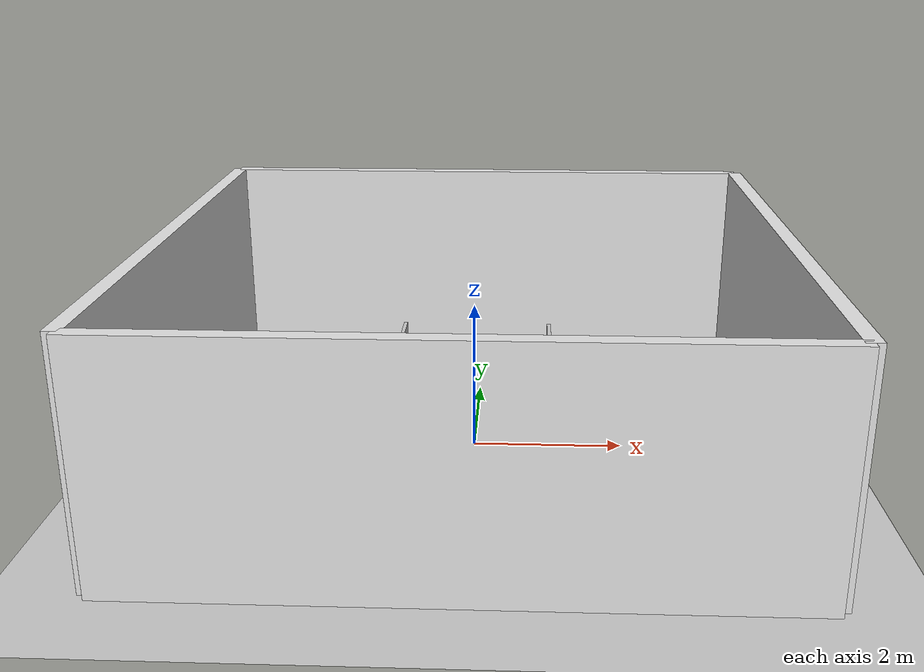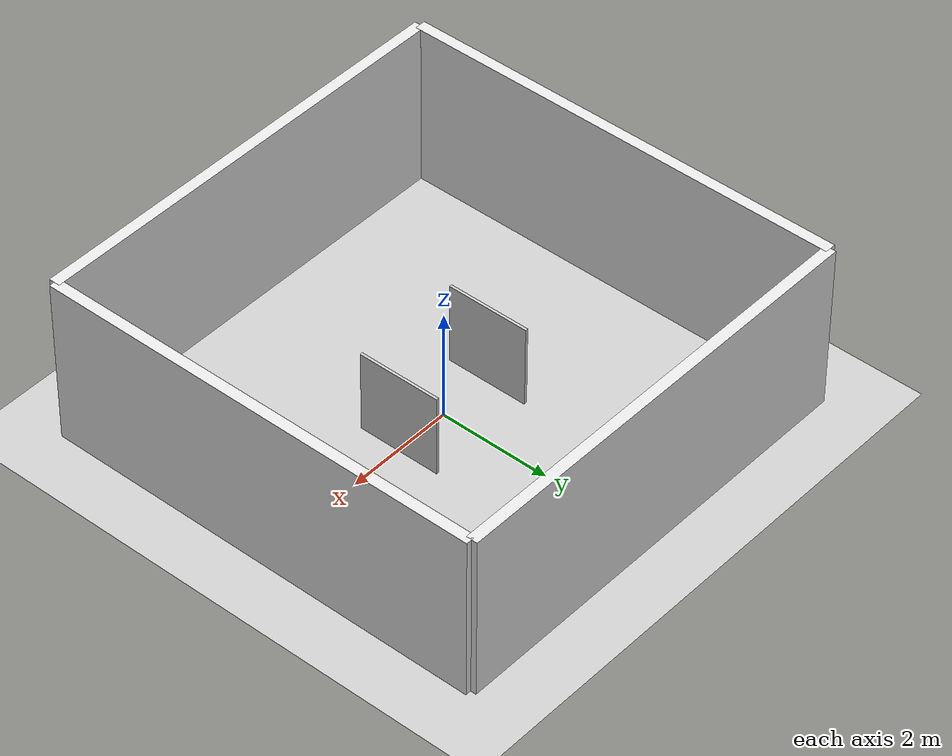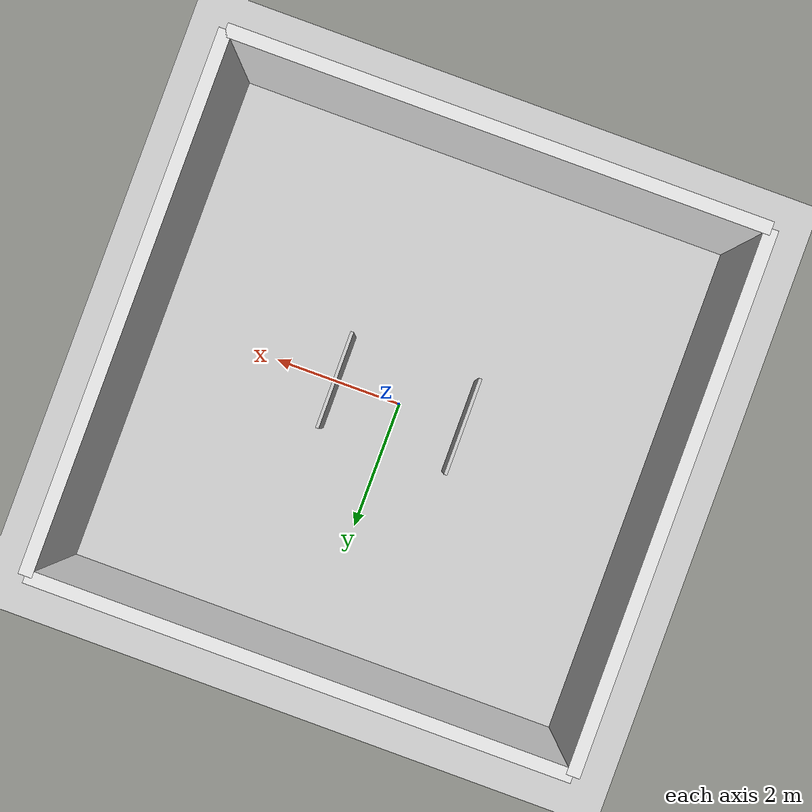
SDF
<sdf version="1.6">
 <world name="office">
  <physics type="ode"><max_step_size>0.001</max_step_size><real_time_factor>1.0</real_time_factor></physics>
  <scene><ambient>0.4 0.4 0.4 1</ambient><background>0.85 0.85 0.9 1</background><shadows>true</shadows></scene>
  <include><uri>https://fuel.gazebosim.org/1.0/OpenRobotics/models/Ground Plane</uri></include>
  <model name="office_wall_north">
   <static>true</static>
   <pose>0 4 1.5 0 0 0</pose>
   <link name="link">
    <collision><geometry><box><size>8 0.2 3</size></box></geometry></collision>
    <visual>
     <geometry><box><size>8 0.2 3</size></box></geometry>
     <material><ambient>0.9 0.9 0.9 1</ambient></material>
    </visual>
   </link>
  </model>
  <model name="office_wall_south">
   <static>true</static>
   <pose>0 -4 1.5 0 0 0</pose>
   <link name="link">
    <collision><geometry><box><size>8 0.2 3</size></box></geometry></collision>
    <visual>
     <geometry><box><size>8 0.2 3</size></box></geometry>
     <material><ambient>0.9 0.9 0.9 1</ambient></material>
    </visual>
   </link>
  </model>
  <model name="office_wall_east">
   <static>true</static>
   <pose>4 0 1.5 0 0 0</pose>
   <link name="link">
    <collision><geometry><box><size>0.2 8 3</size></box></geometry></collision>
    <visual>
     <geometry><box><size>0.2 8 3</size></box></geometry>
     <material><ambient>0.9 0.9 0.9 1</ambient></material>
    </visual>
   </link>
  </model>
  <model name="office_wall_west">
   <static>true</static>
   <pose>-4 0 1.5 0 0 0</pose>
   <link name="link">
    <collision><geometry><box><size>0.2 8 3</size></box></geometry></collision>
    <visual>
     <geometry><box><size>0.2 8 3</size></box></geometry>
     <material><ambient>0.9 0.9 0.9 1</ambient></material>
    </visual>
   </link>
  </model>
  <model name="partition_1">
   <static>true</static>
   <pose>-1 0 0.75 0 0 0</pose>
   <link name="link">
    <collision><geometry><box><size>0.05 1.5 1.5</size></box></geometry></collision>
    <visual>
     <geometry><box><size>0.05 1.5 1.5</size></box></geometry>
     <material><ambient>0.8 0.8 0.8 1</ambient></material>
    </visual>
   </link>
  </model>
  <model name="partition_2">
   <static>true</static>
   <pose>1 0 0.75 0 0 0</pose>
   <link name="link">
    <collision><geometry><box><size>0.05 1.5 1.5</size></box></geometry></collision>
    <visual>
     <geometry><box><size>0.05 1.5 1.5</size></box></geometry>
     <material><ambient>0.8 0.8 0.8 1</ambient></material>
    </visual>
   </link>
  </model>
  <light name="sun" type="directional">
   <pose>5 5 10 0 0 0</pose>
   <diffuse>0.8 0.8 0.8 1</diffuse>
   <specular>0.2 0.2 0.2 1</specular>
   <direction>-0.5 0.1 -0.9</direction>
  </light>
 </world>
</sdf>
